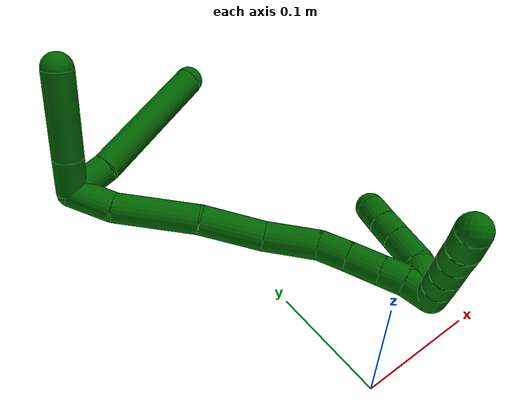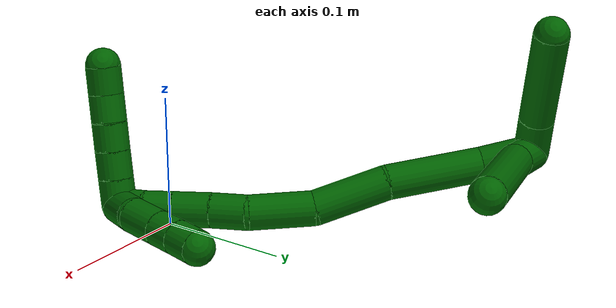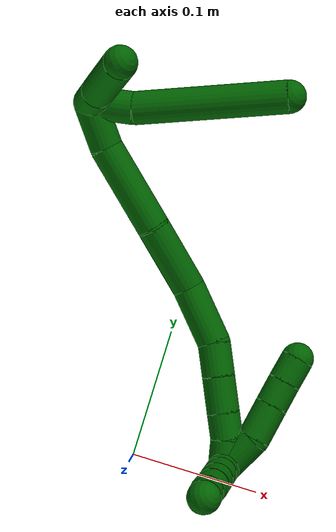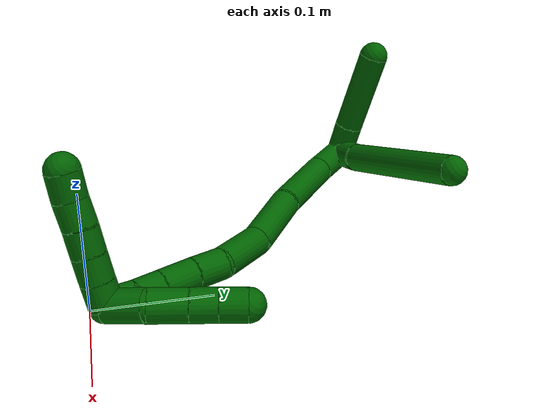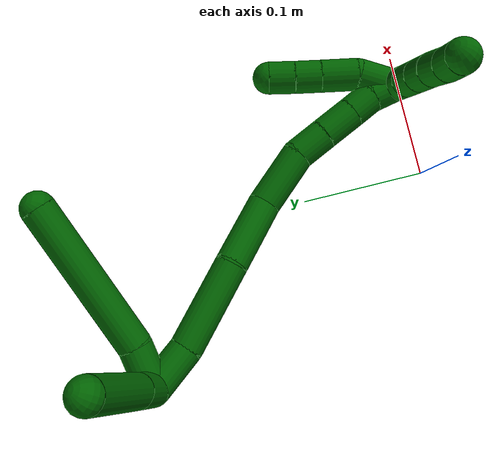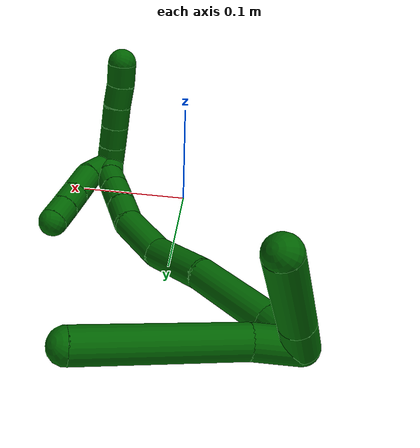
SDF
<sdf version="1.7">
 <world name="default">
  <model name="6">
   <static>0</static>
   <link name="6">
    <collision name="collision-cylinder-e_1_2_8">
     <pose>0.012332 0.002327 0.011341 -0.202355 0.816959 -0.087828</pose>
     <geometry><cylinder><radius>0.0125</radius><length>0.03383</length></cylinder></geometry>
     <surface>
      <friction><ode><mu>1.16</mu><mu2>1.16</mu2><slip1>0</slip1><slip2>0</slip2></ode></friction>
      <contact><ode><kp>1e+06</kp><kd>1</kd><max_vel>0</max_vel><min_depth>0.001</min_depth></ode></contact>
     </surface>
    </collision>
    <visual name="visual-cylinder-e_1_2_8">
     <pose>0.012332 0.002327 0.011341 -0.202355 0.816959 -0.087828</pose>
     <geometry><cylinder><radius>0.0125</radius><length>0.03383</length></cylinder></geometry>
     <material><ambient>0 0.392157 0.003922 1</ambient></material>
    </visual>
    <collision name="collision-cylinder-e_2_8_6">
     <pose>0.059049 0.019155 0.067194 -0.314942 0.633495 -0.104001</pose>
     <geometry><cylinder><radius>0.0125</radius><length>0.11617</length></cylinder></geometry>
     <surface>
      <friction><ode><mu>1.16</mu><mu2>1.16</mu2><slip1>0</slip1><slip2>0</slip2></ode></friction>
      <contact><ode><kp>1e+06</kp><kd>1</kd><max_vel>0</max_vel><min_depth>0.001</min_depth></ode></contact>
     </surface>
    </collision>
    <visual name="visual-cylinder-e_2_8_6">
     <pose>0.059049 0.019155 0.067194 -0.314942 0.633495 -0.104001</pose>
     <geometry><cylinder><radius>0.0125</radius><length>0.11617</length></cylinder></geometry>
     <material><ambient>0 0.392157 0.003922 1</ambient></material>
    </visual>
    <collision name="collision-cylinder-e_1_2_9">
     <pose>-0.003388 -0.006288 0.012909 0.453252 -0.231705 -0.053656</pose>
     <geometry><cylinder><radius>0.0125</radius><length>0.029506</length></cylinder></geometry>
     <surface>
      <friction><ode><mu>1.16</mu><mu2>1.16</mu2><slip1>0</slip1><slip2>0</slip2></ode></friction>
      <contact><ode><kp>1e+06</kp><kd>1</kd><max_vel>0</max_vel><min_depth>0.001</min_depth></ode></contact>
     </surface>
    </collision>
    <visual name="visual-cylinder-e_1_2_9">
     <pose>-0.003388 -0.006288 0.012909 0.453252 -0.231705 -0.053656</pose>
     <geometry><cylinder><radius>0.0125</radius><length>0.029506</length></cylinder></geometry>
     <material><ambient>0 0.392157 0.003922 1</ambient></material>
    </visual>
    <collision name="collision-cylinder-e_2_9_5">
     <pose>-0.014723 -0.027062 0.056952 0.435513 -0.22743 -0.050529</pose>
     <geometry><cylinder><radius>0.0125</radius><length>0.070494</length></cylinder></geometry>
     <surface>
      <friction><ode><mu>1.16</mu><mu2>1.16</mu2><slip1>0</slip1><slip2>0</slip2></ode></friction>
      <contact><ode><kp>1e+06</kp><kd>1</kd><max_vel>0</max_vel><min_depth>0.001</min_depth></ode></contact>
     </surface>
    </collision>
    <visual name="visual-cylinder-e_2_9_5">
     <pose>-0.014723 -0.027062 0.056952 0.435513 -0.22743 -0.050529</pose>
     <geometry><cylinder><radius>0.0125</radius><length>0.070494</length></cylinder></geometry>
     <material><ambient>0 0.392157 0.003922 1</ambient></material>
    </visual>
    <collision name="collision-cylinder-e_1_2_10">
     <pose>0.016068 -0.00672 -0.004583 2.16928 1.10218 1.72124</pose>
     <geometry><cylinder><radius>0.0125</radius><length>0.036019</length></cylinder></geometry>
     <surface>
      <friction><ode><mu>1.16</mu><mu2>1.16</mu2><slip1>0</slip1><slip2>0</slip2></ode></friction>
      <contact><ode><kp>1e+06</kp><kd>1</kd><max_vel>0</max_vel><min_depth>0.001</min_depth></ode></contact>
     </surface>
    </collision>
    <visual name="visual-cylinder-e_1_2_10">
     <pose>0.016068 -0.00672 -0.004583 2.16928 1.10218 1.72124</pose>
     <geometry><cylinder><radius>0.0125</radius><length>0.036019</length></cylinder></geometry>
     <material><ambient>0 0.392157 0.003922 1</ambient></material>
    </visual>
    <collision name="collision-cylinder-e_2_10_11">
     <pose>0.064507 -0.025691 -0.010432 1.67385 1.20724 1.30537</pose>
     <geometry><cylinder><radius>0.0125</radius><length>0.069268</length></cylinder></geometry>
     <surface>
      <friction><ode><mu>1.16</mu><mu2>1.16</mu2><slip1>0</slip1><slip2>0</slip2></ode></friction>
      <contact><ode><kp>1e+06</kp><kd>1</kd><max_vel>0</max_vel><min_depth>0.001</min_depth></ode></contact>
     </surface>
    </collision>
    <visual name="visual-cylinder-e_2_10_11">
     <pose>0.064507 -0.025691 -0.010432 1.67385 1.20724 1.30537</pose>
     <geometry><cylinder><radius>0.0125</radius><length>0.069268</length></cylinder></geometry>
     <material><ambient>0 0.392157 0.003922 1</ambient></material>
    </visual>
    <collision name="collision-cylinder-e_3_11_12">
     <pose>0.1226 -0.044311 -0.015804 2.14327 1.28432 1.88177</pose>
     <geometry><cylinder><radius>0.0125</radius><length>0.053631</length></cylinder></geometry>
     <surface>
      <friction><ode><mu>1.16</mu><mu2>1.16</mu2><slip1>0</slip1><slip2>0</slip2></ode></friction>
      <contact><ode><kp>1e+06</kp><kd>1</kd><max_vel>0</max_vel><min_depth>0.001</min_depth></ode></contact>
     </surface>
    </collision>
    <visual name="visual-cylinder-e_3_11_12">
     <pose>0.1226 -0.044311 -0.015804 2.14327 1.28432 1.88177</pose>
     <geometry><cylinder><radius>0.0125</radius><length>0.053631</length></cylinder></geometry>
     <material><ambient>0 0.392157 0.003922 1</ambient></material>
    </visual>
    <collision name="collision-cylinder-e_4_12_13">
     <pose>0.168588 -0.061687 -0.021109 1.67937 1.07075 1.1686</pose>
     <geometry><cylinder><radius>0.0125</radius><length>0.046187</length></cylinder></geometry>
     <surface>
      <friction><ode><mu>1.16</mu><mu2>1.16</mu2><slip1>0</slip1><slip2>0</slip2></ode></friction>
      <contact><ode><kp>1e+06</kp><kd>1</kd><max_vel>0</max_vel><min_depth>0.001</min_depth></ode></contact>
     </surface>
    </collision>
    <visual name="visual-cylinder-e_4_12_13">
     <pose>0.168588 -0.061687 -0.021109 1.67937 1.07075 1.1686</pose>
     <geometry><cylinder><radius>0.0125</radius><length>0.046187</length></cylinder></geometry>
     <material><ambient>0 0.392157 0.003922 1</ambient></material>
    </visual>
    <collision name="collision-cylinder-e_5_13_14">
     <pose>0.198147 -0.080876 -0.02552 1.9448 0.813202 1.12662</pose>
     <geometry><cylinder><radius>0.0125</radius><length>0.025581</length></cylinder></geometry>
     <surface>
      <friction><ode><mu>1.16</mu><mu2>1.16</mu2><slip1>0</slip1><slip2>0</slip2></ode></friction>
      <contact><ode><kp>1e+06</kp><kd>1</kd><max_vel>0</max_vel><min_depth>0.001</min_depth></ode></contact>
     </surface>
    </collision>
    <visual name="visual-cylinder-e_5_13_14">
     <pose>0.198147 -0.080876 -0.02552 1.9448 0.813202 1.12662</pose>
     <geometry><cylinder><radius>0.0125</radius><length>0.025581</length></cylinder></geometry>
     <material><ambient>0 0.392157 0.003922 1</ambient></material>
    </visual>
    <collision name="collision-cylinder-e_6_14_15">
     <pose>0.217629 -0.097598 -0.032531 1.98953 0.828523 1.19022</pose>
     <geometry><cylinder><radius>0.0125</radius><length>0.027656</length></cylinder></geometry>
     <surface>
      <friction><ode><mu>1.16</mu><mu2>1.16</mu2><slip1>0</slip1><slip2>0</slip2></ode></friction>
      <contact><ode><kp>1e+06</kp><kd>1</kd><max_vel>0</max_vel><min_depth>0.001</min_depth></ode></contact>
     </surface>
    </collision>
    <visual name="visual-cylinder-e_6_14_15">
     <pose>0.217629 -0.097598 -0.032531 1.98953 0.828523 1.19022</pose>
     <geometry><cylinder><radius>0.0125</radius><length>0.027656</length></cylinder></geometry>
     <material><ambient>0 0.392157 0.003922 1</ambient></material>
    </visual>
    <collision name="collision-cylinder-e_7_15_16">
     <pose>0.235327 -0.112386 -0.039062 1.98265 0.833487 1.18948</pose>
     <geometry><cylinder><radius>0.0125</radius><length>0.020284</length></cylinder></geometry>
     <surface>
      <friction><ode><mu>1.16</mu><mu2>1.16</mu2><slip1>0</slip1><slip2>0</slip2></ode></friction>
      <contact><ode><kp>1e+06</kp><kd>1</kd><max_vel>0</max_vel><min_depth>0.001</min_depth></ode></contact>
     </surface>
    </collision>
    <visual name="visual-cylinder-e_7_15_16">
     <pose>0.235327 -0.112386 -0.039062 1.98265 0.833487 1.18948</pose>
     <geometry><cylinder><radius>0.0125</radius><length>0.020284</length></cylinder></geometry>
     <material><ambient>0 0.392157 0.003922 1</ambient></material>
    </visual>
    <collision name="collision-cylinder-e_8_16_1">
     <pose>0.249197 -0.125841 -0.046461 2.14576 0.637579 1.09132</pose>
     <geometry><cylinder><radius>0.0125</radius><length>0.021373</length></cylinder></geometry>
     <surface>
      <friction><ode><mu>1.16</mu><mu2>1.16</mu2><slip1>0</slip1><slip2>0</slip2></ode></friction>
      <contact><ode><kp>1e+06</kp><kd>1</kd><max_vel>0</max_vel><min_depth>0.001</min_depth></ode></contact>
     </surface>
    </collision>
    <visual name="visual-cylinder-e_8_16_1">
     <pose>0.249197 -0.125841 -0.046461 2.14576 0.637579 1.09132</pose>
     <geometry><cylinder><radius>0.0125</radius><length>0.021373</length></cylinder></geometry>
     <material><ambient>0 0.392157 0.003922 1</ambient></material>
    </visual>
    <collision name="collision-cylinder-e_1_1_17">
     <pose>0.255586 -0.123309 -0.03911 -0.68086 0.001801 -0.000638</pose>
     <geometry><cylinder><radius>0.0125</radius><length>0.03094</length></cylinder></geometry>
     <surface>
      <friction><ode><mu>1.16</mu><mu2>1.16</mu2><slip1>0</slip1><slip2>0</slip2></ode></friction>
      <contact><ode><kp>1e+06</kp><kd>1</kd><max_vel>0</max_vel><min_depth>0.001</min_depth></ode></contact>
     </surface>
    </collision>
    <visual name="visual-cylinder-e_1_1_17">
     <pose>0.255586 -0.123309 -0.03911 -0.68086 0.001801 -0.000638</pose>
     <geometry><cylinder><radius>0.0125</radius><length>0.03094</length></cylinder></geometry>
     <material><ambient>0 0.392157 0.003922 1</ambient></material>
    </visual>
    <collision name="collision-cylinder-e_2_17_18">
     <pose>0.252475 -0.102327 -0.0189 -0.94136 -0.221929 0.113267</pose>
     <geometry><cylinder><radius>0.0125</radius><length>0.02852</length></cylinder></geometry>
     <surface>
      <friction><ode><mu>1.16</mu><mu2>1.16</mu2><slip1>0</slip1><slip2>0</slip2></ode></friction>
      <contact><ode><kp>1e+06</kp><kd>1</kd><max_vel>0</max_vel><min_depth>0.001</min_depth></ode></contact>
     </surface>
    </collision>
    <visual name="visual-cylinder-e_2_17_18">
     <pose>0.252475 -0.102327 -0.0189 -0.94136 -0.221929 0.113267</pose>
     <geometry><cylinder><radius>0.0125</radius><length>0.02852</length></cylinder></geometry>
     <material><ambient>0 0.392157 0.003922 1</ambient></material>
    </visual>
    <collision name="collision-cylinder-e_3_18_19">
     <pose>0.24711 -0.083176 -0.004837 -0.931829 -0.2223 0.112125</pose>
     <geometry><cylinder><radius>0.0125</radius><length>0.020196</length></cylinder></geometry>
     <surface>
      <friction><ode><mu>1.16</mu><mu2>1.16</mu2><slip1>0</slip1><slip2>0</slip2></ode></friction>
      <contact><ode><kp>1e+06</kp><kd>1</kd><max_vel>0</max_vel><min_depth>0.001</min_depth></ode></contact>
     </surface>
    </collision>
    <visual name="visual-cylinder-e_3_18_19">
     <pose>0.24711 -0.083176 -0.004837 -0.931829 -0.2223 0.112125</pose>
     <geometry><cylinder><radius>0.0125</radius><length>0.020196</length></cylinder></geometry>
     <material><ambient>0 0.392157 0.003922 1</ambient></material>
    </visual>
    <collision name="collision-cylinder-e_4_19_4">
     <pose>0.242842 -0.067302 0.007021 -0.92661 -0.202023 0.101183</pose>
     <geometry><cylinder><radius>0.0125</radius><length>0.020344</length></cylinder></geometry>
     <surface>
      <friction><ode><mu>1.16</mu><mu2>1.16</mu2><slip1>0</slip1><slip2>0</slip2></ode></friction>
      <contact><ode><kp>1e+06</kp><kd>1</kd><max_vel>0</max_vel><min_depth>0.001</min_depth></ode></contact>
     </surface>
    </collision>
    <visual name="visual-cylinder-e_4_19_4">
     <pose>0.242842 -0.067302 0.007021 -0.92661 -0.202023 0.101183</pose>
     <geometry><cylinder><radius>0.0125</radius><length>0.020344</length></cylinder></geometry>
     <material><ambient>0 0.392157 0.003922 1</ambient></material>
    </visual>
    <collision name="collision-cylinder-e_1_1_20">
     <pose>0.252221 -0.14096 -0.046006 0.996112 -0.340206 -0.186262</pose>
     <geometry><cylinder><radius>0.0125</radius><length>0.02</length></cylinder></geometry>
     <surface>
      <friction><ode><mu>1.16</mu><mu2>1.16</mu2><slip1>0</slip1><slip2>0</slip2></ode></friction>
      <contact><ode><kp>1e+06</kp><kd>1</kd><max_vel>0</max_vel><min_depth>0.001</min_depth></ode></contact>
     </surface>
    </collision>
    <visual name="visual-cylinder-e_1_1_20">
     <pose>0.252221 -0.14096 -0.046006 0.996112 -0.340206 -0.186262</pose>
     <geometry><cylinder><radius>0.0125</radius><length>0.02</length></cylinder></geometry>
     <material><ambient>0 0.392157 0.003922 1</ambient></material>
    </visual>
    <collision name="collision-cylinder-e_2_20_21">
     <pose>0.24553 -0.156677 -0.035606 0.976339 -0.34209 -0.182944</pose>
     <geometry><cylinder><radius>0.0125</radius><length>0.02</length></cylinder></geometry>
     <surface>
      <friction><ode><mu>1.16</mu><mu2>1.16</mu2><slip1>0</slip1><slip2>0</slip2></ode></friction>
      <contact><ode><kp>1e+06</kp><kd>1</kd><max_vel>0</max_vel><min_depth>0.001</min_depth></ode></contact>
     </surface>
    </collision>
    <visual name="visual-cylinder-e_2_20_21">
     <pose>0.24553 -0.156677 -0.035606 0.976339 -0.34209 -0.182944</pose>
     <geometry><cylinder><radius>0.0125</radius><length>0.02</length></cylinder></geometry>
     <material><ambient>0 0.392157 0.003922 1</ambient></material>
    </visual>
    <collision name="collision-cylinder-e_3_21_22">
     <pose>0.238787 -0.172213 -0.024968 0.964477 -0.345604 -0.182226</pose>
     <geometry><cylinder><radius>0.0125</radius><length>0.02</length></cylinder></geometry>
     <surface>
      <friction><ode><mu>1.16</mu><mu2>1.16</mu2><slip1>0</slip1><slip2>0</slip2></ode></friction>
      <contact><ode><kp>1e+06</kp><kd>1</kd><max_vel>0</max_vel><min_depth>0.001</min_depth></ode></contact>
     </surface>
    </collision>
    <visual name="visual-cylinder-e_3_21_22">
     <pose>0.238787 -0.172213 -0.024968 0.964477 -0.345604 -0.182226</pose>
     <geometry><cylinder><radius>0.0125</radius><length>0.02</length></cylinder></geometry>
     <material><ambient>0 0.392157 0.003922 1</ambient></material>
    </visual>
    <collision name="collision-cylinder-e_4_22_23">
     <pose>0.231829 -0.187971 -0.014829 1.0339 -0.365108 -0.209142</pose>
     <geometry><cylinder><radius>0.0125</radius><length>0.02</length></cylinder></geometry>
     <surface>
      <friction><ode><mu>1.16</mu><mu2>1.16</mu2><slip1>0</slip1><slip2>0</slip2></ode></friction>
      <contact><ode><kp>1e+06</kp><kd>1</kd><max_vel>0</max_vel><min_depth>0.001</min_depth></ode></contact>
     </surface>
    </collision>
    <visual name="visual-cylinder-e_4_22_23">
     <pose>0.231829 -0.187971 -0.014829 1.0339 -0.365108 -0.209142</pose>
     <geometry><cylinder><radius>0.0125</radius><length>0.02</length></cylinder></geometry>
     <material><ambient>0 0.392157 0.003922 1</ambient></material>
    </visual>
    <collision name="collision-cylinder-e_5_23_3">
     <pose>0.224997 -0.203412 -0.004188 0.901677 -0.332282 -0.161996</pose>
     <geometry><cylinder><radius>0.0125</radius><length>0.02</length></cylinder></geometry>
     <surface>
      <friction><ode><mu>1.16</mu><mu2>1.16</mu2><slip1>0</slip1><slip2>0</slip2></ode></friction>
      <contact><ode><kp>1e+06</kp><kd>1</kd><max_vel>0</max_vel><min_depth>0.001</min_depth></ode></contact>
     </surface>
    </collision>
    <visual name="visual-cylinder-e_5_23_3">
     <pose>0.224997 -0.203412 -0.004188 0.901677 -0.332282 -0.161996</pose>
     <geometry><cylinder><radius>0.0125</radius><length>0.02</length></cylinder></geometry>
     <material><ambient>0 0.392157 0.003922 1</ambient></material>
    </visual>
    <collision name="collision-sphere-3">
     <pose>0.221735 -0.210827 0.001676 0 -0 0</pose>
     <geometry><sphere><radius>0.0125</radius></sphere></geometry>
     <surface>
      <friction><ode><mu>1.16</mu><mu2>1.16</mu2><slip1>0</slip1><slip2>0</slip2></ode></friction>
      <contact><ode><kp>1e+06</kp><kd>1</kd><max_vel>0</max_vel><min_depth>0.001</min_depth></ode></contact>
     </surface>
    </collision>
    <visual name="visual-sphere-3">
     <pose>0.221735 -0.210827 0.001676 0 -0 0</pose>
     <geometry><sphere><radius>0.0125</radius></sphere></geometry>
     <material><ambient>0 0.392157 0.003922 1</ambient></material>
    </visual>
    <collision name="collision-sphere-23">
     <pose>0.228259 -0.195998 -0.010052 0 -0 0</pose>
     <geometry><sphere><radius>0.0125</radius></sphere></geometry>
     <surface>
      <friction><ode><mu>1.16</mu><mu2>1.16</mu2><slip1>0</slip1><slip2>0</slip2></ode></friction>
      <contact><ode><kp>1e+06</kp><kd>1</kd><max_vel>0</max_vel><min_depth>0.001</min_depth></ode></contact>
     </surface>
    </collision>
    <visual name="visual-sphere-23">
     <pose>0.228259 -0.195998 -0.010052 0 -0 0</pose>
     <geometry><sphere><radius>0.0125</radius></sphere></geometry>
     <material><ambient>0 0.392157 0.003922 1</ambient></material>
    </visual>
    <collision name="collision-sphere-22">
     <pose>0.2354 -0.179944 -0.019607 0 -0 0</pose>
     <geometry><sphere><radius>0.0125</radius></sphere></geometry>
     <surface>
      <friction><ode><mu>1.16</mu><mu2>1.16</mu2><slip1>0</slip1><slip2>0</slip2></ode></friction>
      <contact><ode><kp>1e+06</kp><kd>1</kd><max_vel>0</max_vel><min_depth>0.001</min_depth></ode></contact>
     </surface>
    </collision>
    <visual name="visual-sphere-22">
     <pose>0.2354 -0.179944 -0.019607 0 -0 0</pose>
     <geometry><sphere><radius>0.0125</radius></sphere></geometry>
     <material><ambient>0 0.392157 0.003922 1</ambient></material>
    </visual>
    <collision name="collision-sphere-21">
     <pose>0.242175 -0.164481 -0.03033 0 -0 0</pose>
     <geometry><sphere><radius>0.0125</radius></sphere></geometry>
     <surface>
      <friction><ode><mu>1.16</mu><mu2>1.16</mu2><slip1>0</slip1><slip2>0</slip2></ode></friction>
      <contact><ode><kp>1e+06</kp><kd>1</kd><max_vel>0</max_vel><min_depth>0.001</min_depth></ode></contact>
     </surface>
    </collision>
    <visual name="visual-sphere-21">
     <pose>0.242175 -0.164481 -0.03033 0 -0 0</pose>
     <geometry><sphere><radius>0.0125</radius></sphere></geometry>
     <material><ambient>0 0.392157 0.003922 1</ambient></material>
    </visual>
    <collision name="collision-sphere-20">
     <pose>0.248884 -0.148872 -0.040882 0 -0 0</pose>
     <geometry><sphere><radius>0.0125</radius></sphere></geometry>
     <surface>
      <friction><ode><mu>1.16</mu><mu2>1.16</mu2><slip1>0</slip1><slip2>0</slip2></ode></friction>
      <contact><ode><kp>1e+06</kp><kd>1</kd><max_vel>0</max_vel><min_depth>0.001</min_depth></ode></contact>
     </surface>
    </collision>
    <visual name="visual-sphere-20">
     <pose>0.248884 -0.148872 -0.040882 0 -0 0</pose>
     <geometry><sphere><radius>0.0125</radius></sphere></geometry>
     <material><ambient>0 0.392157 0.003922 1</ambient></material>
    </visual>
    <collision name="collision-sphere-4">
     <pose>0.240801 -0.059334 0.013006 0 -0 0</pose>
     <geometry><sphere><radius>0.0125</radius></sphere></geometry>
     <surface>
      <friction><ode><mu>1.16</mu><mu2>1.16</mu2><slip1>0</slip1><slip2>0</slip2></ode></friction>
      <contact><ode><kp>1e+06</kp><kd>1</kd><max_vel>0</max_vel><min_depth>0.001</min_depth></ode></contact>
     </surface>
    </collision>
    <visual name="visual-sphere-4">
     <pose>0.240801 -0.059334 0.013006 0 -0 0</pose>
     <geometry><sphere><radius>0.0125</radius></sphere></geometry>
     <material><ambient>0 0.392157 0.003922 1</ambient></material>
    </visual>
    <collision name="collision-sphere-10">
     <pose>0.032136 -0.013441 -0.009165 0 -0 0</pose>
     <geometry><sphere><radius>0.0125</radius></sphere></geometry>
     <surface>
      <friction><ode><mu>1.16</mu><mu2>1.16</mu2><slip1>0</slip1><slip2>0</slip2></ode></friction>
      <contact><ode><kp>1e+06</kp><kd>1</kd><max_vel>0</max_vel><min_depth>0.001</min_depth></ode></contact>
     </surface>
    </collision>
    <visual name="visual-sphere-10">
     <pose>0.032136 -0.013441 -0.009165 0 -0 0</pose>
     <geometry><sphere><radius>0.0125</radius></sphere></geometry>
     <material><ambient>0 0.392157 0.003922 1</ambient></material>
    </visual>
    <collision name="collision-sphere-5">
     <pose>-0.02267 -0.041549 0.088086 0 -0 0</pose>
     <geometry><sphere><radius>0.0125</radius></sphere></geometry>
     <surface>
      <friction><ode><mu>1.16</mu><mu2>1.16</mu2><slip1>0</slip1><slip2>0</slip2></ode></friction>
      <contact><ode><kp>1e+06</kp><kd>1</kd><max_vel>0</max_vel><min_depth>0.001</min_depth></ode></contact>
     </surface>
    </collision>
    <visual name="visual-sphere-5">
     <pose>-0.02267 -0.041549 0.088086 0 -0 0</pose>
     <geometry><sphere><radius>0.0125</radius></sphere></geometry>
     <material><ambient>0 0.392157 0.003922 1</ambient></material>
    </visual>
    <collision name="collision-sphere-6">
     <pose>0.093433 0.033656 0.111706 0 -0 0</pose>
     <geometry><sphere><radius>0.0125</radius></sphere></geometry>
     <surface>
      <friction><ode><mu>1.16</mu><mu2>1.16</mu2><slip1>0</slip1><slip2>0</slip2></ode></friction>
      <contact><ode><kp>1e+06</kp><kd>1</kd><max_vel>0</max_vel><min_depth>0.001</min_depth></ode></contact>
     </surface>
    </collision>
    <visual name="visual-sphere-6">
     <pose>0.093433 0.033656 0.111706 0 -0 0</pose>
     <geometry><sphere><radius>0.0125</radius></sphere></geometry>
     <material><ambient>0 0.392157 0.003922 1</ambient></material>
    </visual>
    <collision name="collision-sphere-9">
     <pose>-0.006776 -0.012575 0.025818 0 -0 0</pose>
     <geometry><sphere><radius>0.0125</radius></sphere></geometry>
     <surface>
      <friction><ode><mu>1.16</mu><mu2>1.16</mu2><slip1>0</slip1><slip2>0</slip2></ode></friction>
      <contact><ode><kp>1e+06</kp><kd>1</kd><max_vel>0</max_vel><min_depth>0.001</min_depth></ode></contact>
     </surface>
    </collision>
    <visual name="visual-sphere-9">
     <pose>-0.006776 -0.012575 0.025818 0 -0 0</pose>
     <geometry><sphere><radius>0.0125</radius></sphere></geometry>
     <material><ambient>0 0.392157 0.003922 1</ambient></material>
    </visual>
    <collision name="collision-sphere-2">
     <geometry><sphere><radius>0.0125</radius></sphere></geometry>
     <surface>
      <friction><ode><mu>1.16</mu><mu2>1.16</mu2><slip1>0</slip1><slip2>0</slip2></ode></friction>
      <contact><ode><kp>1e+06</kp><kd>1</kd><max_vel>0</max_vel><min_depth>0.001</min_depth></ode></contact>
     </surface>
    </collision>
    <visual name="visual-sphere-2">
     <geometry><sphere><radius>0.0125</radius></sphere></geometry>
     <material><ambient>0 0.392157 0.003922 1</ambient></material>
    </visual>
    <collision name="collision-sphere-19">
     <pose>0.244883 -0.07527 0.001037 0 -0 0</pose>
     <geometry><sphere><radius>0.0125</radius></sphere></geometry>
     <surface>
      <friction><ode><mu>1.16</mu><mu2>1.16</mu2><slip1>0</slip1><slip2>0</slip2></ode></friction>
      <contact><ode><kp>1e+06</kp><kd>1</kd><max_vel>0</max_vel><min_depth>0.001</min_depth></ode></contact>
     </surface>
    </collision>
    <visual name="visual-sphere-19">
     <pose>0.244883 -0.07527 0.001037 0 -0 0</pose>
     <geometry><sphere><radius>0.0125</radius></sphere></geometry>
     <material><ambient>0 0.392157 0.003922 1</ambient></material>
    </visual>
    <collision name="collision-sphere-8">
     <pose>0.024664 0.004654 0.022682 0 -0 0</pose>
     <geometry><sphere><radius>0.0125</radius></sphere></geometry>
     <surface>
      <friction><ode><mu>1.16</mu><mu2>1.16</mu2><slip1>0</slip1><slip2>0</slip2></ode></friction>
      <contact><ode><kp>1e+06</kp><kd>1</kd><max_vel>0</max_vel><min_depth>0.001</min_depth></ode></contact>
     </surface>
    </collision>
    <visual name="visual-sphere-8">
     <pose>0.024664 0.004654 0.022682 0 -0 0</pose>
     <geometry><sphere><radius>0.0125</radius></sphere></geometry>
     <material><ambient>0 0.392157 0.003922 1</ambient></material>
    </visual>
    <collision name="collision-sphere-11">
     <pose>0.096877 -0.037941 -0.011699 0 -0 0</pose>
     <geometry><sphere><radius>0.0125</radius></sphere></geometry>
     <surface>
      <friction><ode><mu>1.16</mu><mu2>1.16</mu2><slip1>0</slip1><slip2>0</slip2></ode></friction>
      <contact><ode><kp>1e+06</kp><kd>1</kd><max_vel>0</max_vel><min_depth>0.001</min_depth></ode></contact>
     </surface>
    </collision>
    <visual name="visual-sphere-11">
     <pose>0.096877 -0.037941 -0.011699 0 -0 0</pose>
     <geometry><sphere><radius>0.0125</radius></sphere></geometry>
     <material><ambient>0 0.392157 0.003922 1</ambient></material>
    </visual>
    <collision name="collision-sphere-12">
     <pose>0.148322 -0.05068 -0.019909 0 -0 0</pose>
     <geometry><sphere><radius>0.0125</radius></sphere></geometry>
     <surface>
      <friction><ode><mu>1.16</mu><mu2>1.16</mu2><slip1>0</slip1><slip2>0</slip2></ode></friction>
      <contact><ode><kp>1e+06</kp><kd>1</kd><max_vel>0</max_vel><min_depth>0.001</min_depth></ode></contact>
     </surface>
    </collision>
    <visual name="visual-sphere-12">
     <pose>0.148322 -0.05068 -0.019909 0 -0 0</pose>
     <geometry><sphere><radius>0.0125</radius></sphere></geometry>
     <material><ambient>0 0.392157 0.003922 1</ambient></material>
    </visual>
    <collision name="collision-sphere-13">
     <pose>0.188854 -0.072695 -0.022309 0 -0 0</pose>
     <geometry><sphere><radius>0.0125</radius></sphere></geometry>
     <surface>
      <friction><ode><mu>1.16</mu><mu2>1.16</mu2><slip1>0</slip1><slip2>0</slip2></ode></friction>
      <contact><ode><kp>1e+06</kp><kd>1</kd><max_vel>0</max_vel><min_depth>0.001</min_depth></ode></contact>
     </surface>
    </collision>
    <visual name="visual-sphere-13">
     <pose>0.188854 -0.072695 -0.022309 0 -0 0</pose>
     <geometry><sphere><radius>0.0125</radius></sphere></geometry>
     <material><ambient>0 0.392157 0.003922 1</ambient></material>
    </visual>
    <collision name="collision-sphere-14">
     <pose>0.207439 -0.089058 -0.028731 0 -0 0</pose>
     <geometry><sphere><radius>0.0125</radius></sphere></geometry>
     <surface>
      <friction><ode><mu>1.16</mu><mu2>1.16</mu2><slip1>0</slip1><slip2>0</slip2></ode></friction>
      <contact><ode><kp>1e+06</kp><kd>1</kd><max_vel>0</max_vel><min_depth>0.001</min_depth></ode></contact>
     </surface>
    </collision>
    <visual name="visual-sphere-14">
     <pose>0.207439 -0.089058 -0.028731 0 -0 0</pose>
     <geometry><sphere><radius>0.0125</radius></sphere></geometry>
     <material><ambient>0 0.392157 0.003922 1</ambient></material>
    </visual>
    <collision name="collision-sphere-15">
     <pose>0.227819 -0.106138 -0.036332 0 -0 0</pose>
     <geometry><sphere><radius>0.0125</radius></sphere></geometry>
     <surface>
      <friction><ode><mu>1.16</mu><mu2>1.16</mu2><slip1>0</slip1><slip2>0</slip2></ode></friction>
      <contact><ode><kp>1e+06</kp><kd>1</kd><max_vel>0</max_vel><min_depth>0.001</min_depth></ode></contact>
     </surface>
    </collision>
    <visual name="visual-sphere-15">
     <pose>0.227819 -0.106138 -0.036332 0 -0 0</pose>
     <geometry><sphere><radius>0.0125</radius></sphere></geometry>
     <material><ambient>0 0.392157 0.003922 1</ambient></material>
    </visual>
    <collision name="collision-sphere-16">
     <pose>0.242835 -0.118634 -0.041791 0 -0 0</pose>
     <geometry><sphere><radius>0.0125</radius></sphere></geometry>
     <surface>
      <friction><ode><mu>1.16</mu><mu2>1.16</mu2><slip1>0</slip1><slip2>0</slip2></ode></friction>
      <contact><ode><kp>1e+06</kp><kd>1</kd><max_vel>0</max_vel><min_depth>0.001</min_depth></ode></contact>
     </surface>
    </collision>
    <visual name="visual-sphere-16">
     <pose>0.242835 -0.118634 -0.041791 0 -0 0</pose>
     <geometry><sphere><radius>0.0125</radius></sphere></geometry>
     <material><ambient>0 0.392157 0.003922 1</ambient></material>
    </visual>
    <collision name="collision-sphere-1">
     <pose>0.255558 -0.133047 -0.05113 0 -0 0</pose>
     <geometry><sphere><radius>0.0125</radius></sphere></geometry>
     <surface>
      <friction><ode><mu>1.16</mu><mu2>1.16</mu2><slip1>0</slip1><slip2>0</slip2></ode></friction>
      <contact><ode><kp>1e+06</kp><kd>1</kd><max_vel>0</max_vel><min_depth>0.001</min_depth></ode></contact>
     </surface>
    </collision>
    <visual name="visual-sphere-1">
     <pose>0.255558 -0.133047 -0.05113 0 -0 0</pose>
     <geometry><sphere><radius>0.0125</radius></sphere></geometry>
     <material><ambient>0 0.392157 0.003922 1</ambient></material>
    </visual>
    <collision name="collision-sphere-18">
     <pose>0.249336 -0.091083 -0.010711 0 -0 0</pose>
     <geometry><sphere><radius>0.0125</radius></sphere></geometry>
     <surface>
      <friction><ode><mu>1.16</mu><mu2>1.16</mu2><slip1>0</slip1><slip2>0</slip2></ode></friction>
      <contact><ode><kp>1e+06</kp><kd>1</kd><max_vel>0</max_vel><min_depth>0.001</min_depth></ode></contact>
     </surface>
    </collision>
    <visual name="visual-sphere-18">
     <pose>0.249336 -0.091083 -0.010711 0 -0 0</pose>
     <geometry><sphere><radius>0.0125</radius></sphere></geometry>
     <material><ambient>0 0.392157 0.003922 1</ambient></material>
    </visual>
    <collision name="collision-sphere-17">
     <pose>0.255613 -0.113571 -0.027089 0 -0 0</pose>
     <geometry><sphere><radius>0.0125</radius></sphere></geometry>
     <surface>
      <friction><ode><mu>1.16</mu><mu2>1.16</mu2><slip1>0</slip1><slip2>0</slip2></ode></friction>
      <contact><ode><kp>1e+06</kp><kd>1</kd><max_vel>0</max_vel><min_depth>0.001</min_depth></ode></contact>
     </surface>
    </collision>
    <visual name="visual-sphere-17">
     <pose>0.255613 -0.113571 -0.027089 0 -0 0</pose>
     <geometry><sphere><radius>0.0125</radius></sphere></geometry>
     <material><ambient>0 0.392157 0.003922 1</ambient></material>
    </visual>
    <inertial>
     <pose>0.127522 -0.058375 0.003095 0 -0 0</pose>
     <mass>0.75</mass>
     <inertia>
      <ixx>0.000202</ixx>
      <ixy>0</ixy>
      <ixz>0</ixz>
      <iyy>0.000235</iyy>
      <iyz>0</iyz>
      <izz>-0.000108</izz>
     </inertia>
    </inertial>
   </link>
   <pose>-0.107169 0.244534 0.07868 -0.736823 0.338751 -0.442501</pose>
  </model>
 </world>
</sdf>
